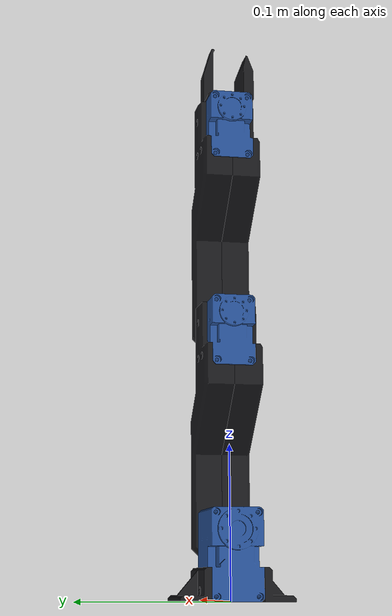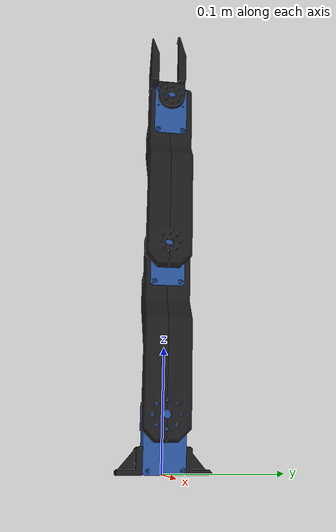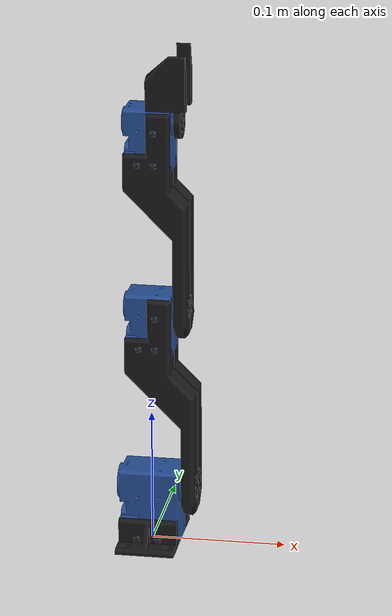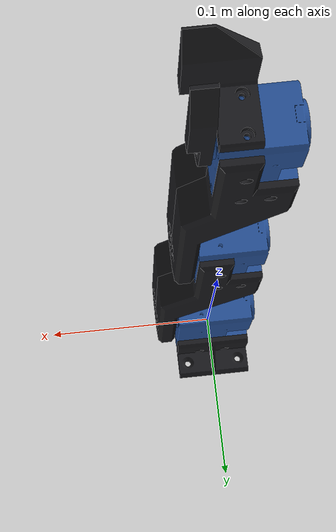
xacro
<?xml version="1.0"?>
<robot name="dyn_arm" xmlns:xacro="http://www.ros.org/wiki/xacro">

  <xacro:property name="meshes"   value="package://dyn_arm/meshes"/>
  <xacro:property name="link_len" value="0.14"/>   <!-- axis-to-axis member length, meters -->

  <material name="pla"><color rgba="0.10 0.10 0.11 1"/></material>
  <material name="motor"><color rgba="0.15 0.32 0.60 1"/></material>

  <!-- ============ BASE: anchor bracket + elbow motor ============ -->
  <link name="base_link">
    <visual>
      <origin xyz="0 0.01675 0" rpy="${pi/2} 0 ${pi/2}"/>
      <geometry><mesh filename="${meshes}/anchor_bracket.stl"/></geometry>
      <material name="pla"/>
    </visual>
    <visual>
      <origin xyz="0 -0.01675 0" rpy="${pi/2} 0 -${pi/2}"/>
      <geometry><mesh filename="${meshes}/anchor_bracket.stl"/></geometry>
      <material name="pla"/>
    </visual>
    <visual>
      <origin xyz="0 0 0.04475" rpy="${pi} 0 ${pi/2}"/>             <!-- elbow motor (XM540), flipped 180 -->
      <geometry><mesh filename="${meshes}/xm540.stl"/></geometry>
      <material name="motor"/>
    </visual>
  </link>

  <joint name="elbow" type="revolute">
    <parent link="base_link"/>
    <child link="forearm_link"/>
    <origin xyz="0 0 0.04475" rpy="${pi/2} 0 0"/>
    <axis xyz="1 0 0"/>
    <limit lower="-${pi/2}" upper="${pi/2}" effort="10.6" velocity="3"/>
  </joint>

  <!-- ============ FOREARM: J3J2 member ============ -->
  <link name="forearm_link">
    <visual>
      <origin xyz="0.0245 0 0" rpy="0 0 0"/>
      <geometry><mesh filename="${meshes}/j3j2_member.stl"/></geometry>
      <material name="pla"/>
    </visual>
    <visual>
      <origin xyz="0.0245 0 0" rpy="${pi} 0 0"/>
      <geometry><mesh filename="${meshes}/j3j2_member_mirrored.stl"/></geometry>
      <material name="pla"/>
    </visual>
    <visual>
      <origin xyz="0 0.14 0" rpy="0 ${pi/2} -${pi/2}"/>             <!-- wrist motor (XM430) -->
      <geometry><mesh filename="${meshes}/xm430.stl"/></geometry>
      <material name="motor"/>
    </visual>
  </link>

  <joint name="wrist" type="revolute">
    <parent link="forearm_link"/>
    <child link="hand_link"/>
    <origin xyz="0 ${link_len} 0" rpy="0 0 0"/>
    <axis xyz="1 0 0"/>
    <limit lower="${-3*pi/4}" upper="${3*pi/4}" effort="3" velocity="3"/>
  </joint>

  <!-- ============ HAND: J2J1 member + wrist motor ============ -->
  <link name="hand_link">
    <visual>
      <origin xyz="0.019 0 0" rpy="0 0 0"/>
      <geometry><mesh filename="${meshes}/j2j1_member.stl"/></geometry>
      <material name="pla"/>
    </visual>
    <visual>
      <origin xyz="0.019 0 0" rpy="${pi} 0 0"/>
      <geometry><mesh filename="${meshes}/j2j1_member_mirrored.stl"/></geometry>
      <material name="pla"/>
    </visual>
    <visual>
      <origin xyz="0 0.14 0" rpy="0 ${pi/2} -${pi/2}"/>
      <geometry><mesh filename="${meshes}/xm430.stl"/></geometry>
      <material name="motor"/>
    </visual>
  </link>

  <joint name="gripper_mount" type="fixed">
    <parent link="hand_link"/>
    <child link="gripper_base_link"/>
    <origin xyz="0 ${link_len} 0" rpy="0 0 0"/>
  </joint>

  <!-- ============ GRIPPER BASE (fixed) ============ -->
  <link name="gripper_base_link">
    <visual>
      <origin xyz="0.0085 0.01125 0" rpy="${pi/2} -${pi} ${pi}"/>
      <geometry><mesh filename="${meshes}/gripper_base.stl"/></geometry>
      <material name="pla"/>
    </visual>
  </link>

  <!-- ============ GRIPPER JAW (moves with the pinch) ============ -->
  <joint name="gripper" type="revolute">
    <parent link="gripper_base_link"/>
    <child link="jaw_link"/>
    <origin xyz="0 0 0" rpy="0 0 0"/>
    <axis xyz="1 0 0"/>
    <limit lower="-0.2" upper="0.425" effort="1" velocity="3"/>   <!-- 0 = closed, ~0.7 rad = open -->
  </joint>
  <link name="jaw_link">
    <visual>
      <origin xyz="0.019 0 0" rpy="-${pi/2} 0 ${pi}"/>
      <geometry><mesh filename="${meshes}/gripper_actuator.stl"/></geometry>
      <material name="pla"/>
    </visual>
  </link>

</robot>
